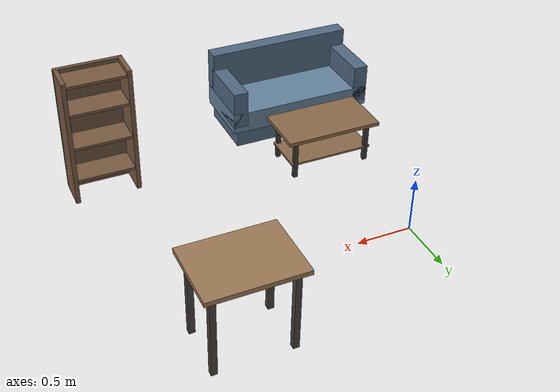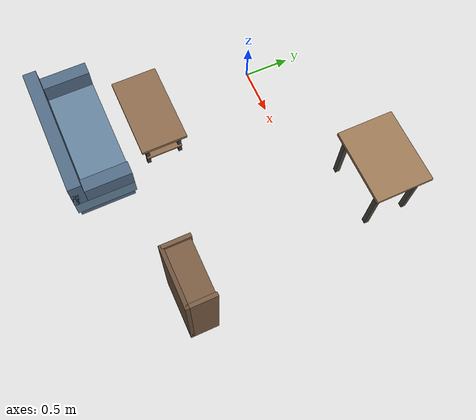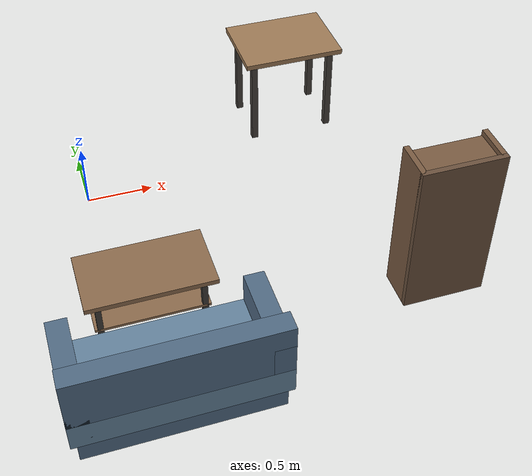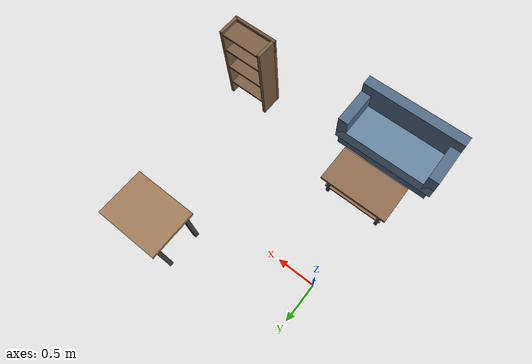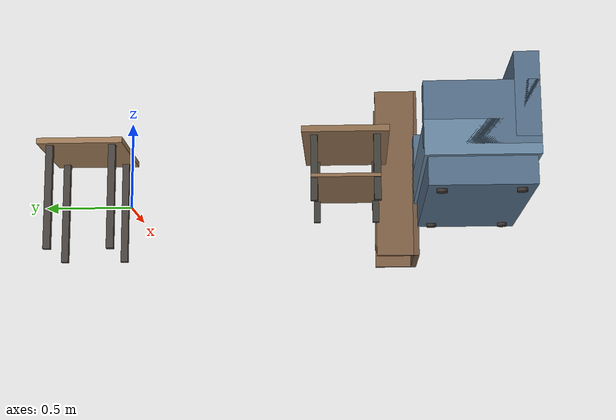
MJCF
<mujoco model="prop_living_mobile_set">
  <!-- 移动机械臂客厅家具：中央留空给底盘，家具靠墙摆 -->
  <asset>
    <material name="prop_table_top" rgba="0.62 0.48 0.34 1" reflectance="0.12"/>
    <material name="prop_table_leg" rgba="0.28 0.26 0.24 1"/>
    <material name="prop_sofa_body" rgba="0.32 0.42 0.52 1"/>
    <material name="prop_sofa_cushion" rgba="0.40 0.52 0.62 1"/>
    <material name="prop_sofa_leg" rgba="0.22 0.2 0.18 1"/>
    <material name="prop_ct_top" rgba="0.55 0.42 0.30 1" reflectance="0.15"/>
    <material name="prop_ct_leg" rgba="0.25 0.24 0.22 1"/>
    <material name="prop_shelf_wood" rgba="0.48 0.36 0.26 1"/>
    <material name="prop_shelf_back" rgba="0.42 0.32 0.24 1"/>
  </asset>

  <worldbody>
    <!-- 边桌 / 操作台：右侧，台面 0.75m（TIAGo 可靠近操作） -->
    <body name="table" pos="1.8 0.6 0">
      <geom name="table_top" type="box" size="0.40 0.30 0.02" pos="0 0 0.75"
        material="prop_table_top" friction="1.2 0.5 0.01"/>
      <geom name="table_leg_fl" type="box" size="0.025 0.025 0.365" pos="0.32 0.22 0.365" material="prop_table_leg"/>
      <geom name="table_leg_fr" type="box" size="0.025 0.025 0.365" pos="0.32 -0.22 0.365" material="prop_table_leg"/>
      <geom name="table_leg_bl" type="box" size="0.025 0.025 0.365" pos="-0.32 0.22 0.365" material="prop_table_leg"/>
      <geom name="table_leg_br" type="box" size="0.025 0.025 0.365" pos="-0.32 -0.22 0.365" material="prop_table_leg"/>
    </body>

    <!-- 沙发：后墙 -->
    <body name="sofa" pos="0.2 -2.0 0">
      <geom name="sofa_seat" type="box" size="0.70 0.32 0.10" pos="0 0 0.28" material="prop_sofa_cushion"
        friction="1 0.5 0.01"/>
      <geom name="sofa_back" type="box" size="0.70 0.07 0.24" pos="0 -0.25 0.52" material="prop_sofa_body"/>
      <geom name="sofa_arm_l" type="box" size="0.07 0.32 0.18" pos="0.63 0 0.42" material="prop_sofa_body"/>
      <geom name="sofa_arm_r" type="box" size="0.07 0.32 0.18" pos="-0.63 0 0.42" material="prop_sofa_body"/>
      <geom name="sofa_base" type="box" size="0.66 0.30 0.08" pos="0 0 0.10" material="prop_sofa_body"/>
      <geom name="sofa_leg_fl" type="cylinder" size="0.03 0.04" pos="0.55 0.22 0.04" material="prop_sofa_leg"/>
      <geom name="sofa_leg_fr" type="cylinder" size="0.03 0.04" pos="0.55 -0.22 0.04" material="prop_sofa_leg"/>
      <geom name="sofa_leg_bl" type="cylinder" size="0.03 0.04" pos="-0.55 0.22 0.04" material="prop_sofa_leg"/>
      <geom name="sofa_leg_br" type="cylinder" size="0.03 0.04" pos="-0.55 -0.22 0.04" material="prop_sofa_leg"/>
    </body>

    <!-- 茶几：沙发前，留出导航通道 -->
    <body name="coffee_table" pos="0.2 -1.25 0">
      <geom name="ct_top" type="box" size="0.45 0.25 0.018" pos="0 0 0.40"
        material="prop_ct_top" friction="1.1 0.5 0.01"/>
      <geom name="ct_leg_fl" type="box" size="0.02 0.02 0.19" pos="0.36 0.18 0.19" material="prop_ct_leg"/>
      <geom name="ct_leg_fr" type="box" size="0.02 0.02 0.19" pos="0.36 -0.18 0.19" material="prop_ct_leg"/>
      <geom name="ct_leg_bl" type="box" size="0.02 0.02 0.19" pos="-0.36 0.18 0.19" material="prop_ct_leg"/>
      <geom name="ct_leg_br" type="box" size="0.02 0.02 0.19" pos="-0.36 -0.18 0.19" material="prop_ct_leg"/>
      <geom name="ct_shelf" type="box" size="0.40 0.20 0.01" pos="0 0 0.14" material="prop_ct_top"/>
    </body>

    <!-- 书架：右后墙角 -->
    <body name="shelf" pos="2.2 -1.6 0">
      <geom name="shelf_back" type="box" size="0.30 0.02 0.60" pos="0 -0.14 0.60" material="prop_shelf_back"/>
      <geom name="shelf_side_l" type="box" size="0.02 0.14 0.60" pos="0.28 0 0.60" material="prop_shelf_wood"/>
      <geom name="shelf_side_r" type="box" size="0.02 0.14 0.60" pos="-0.28 0 0.60" material="prop_shelf_wood"/>
      <geom name="shelf_board_1" type="box" size="0.28 0.13 0.012" pos="0 0 0.22" material="prop_shelf_wood"/>
      <geom name="shelf_board_2" type="box" size="0.28 0.13 0.012" pos="0 0 0.55" material="prop_shelf_wood"/>
      <geom name="shelf_board_3" type="box" size="0.28 0.13 0.012" pos="0 0 0.88" material="prop_shelf_wood"/>
      <geom name="shelf_board_4" type="box" size="0.28 0.13 0.012" pos="0 0 1.15" material="prop_shelf_wood"/>
    </body>
  </worldbody>
</mujoco>
